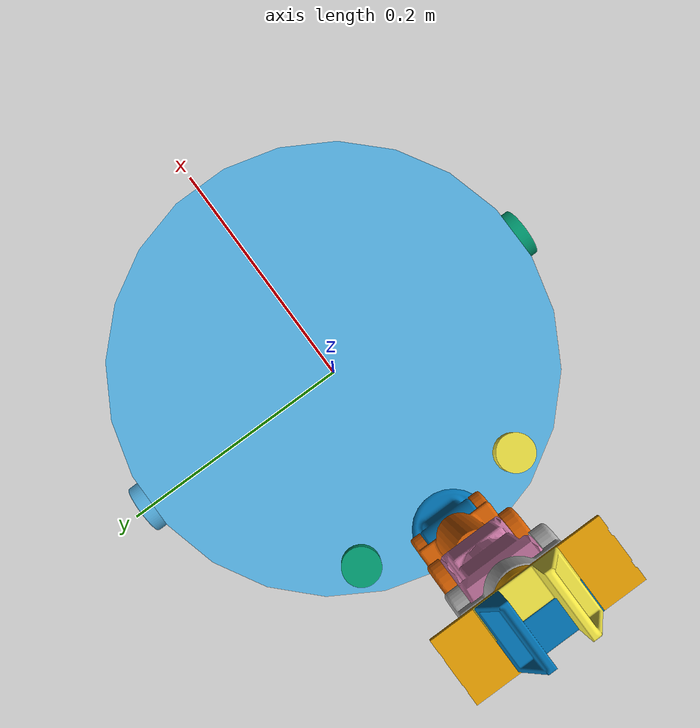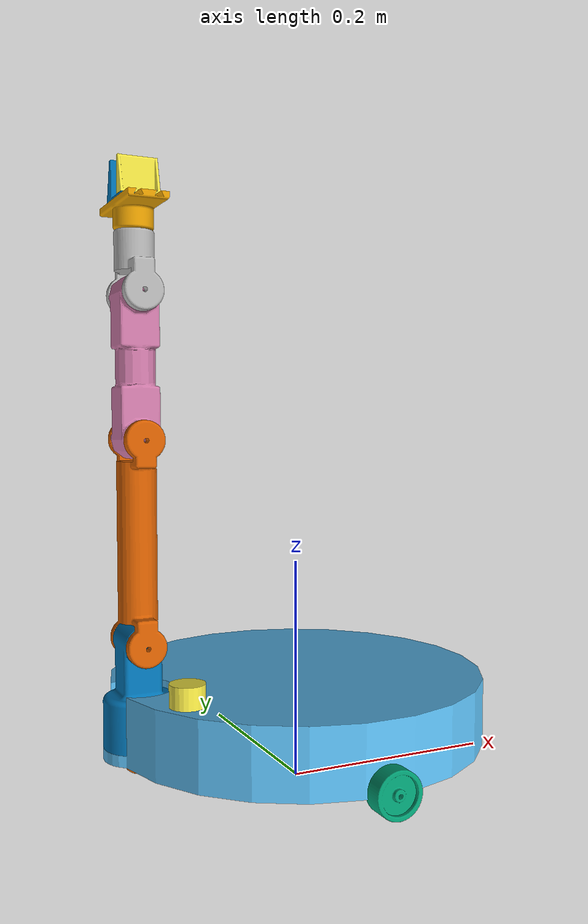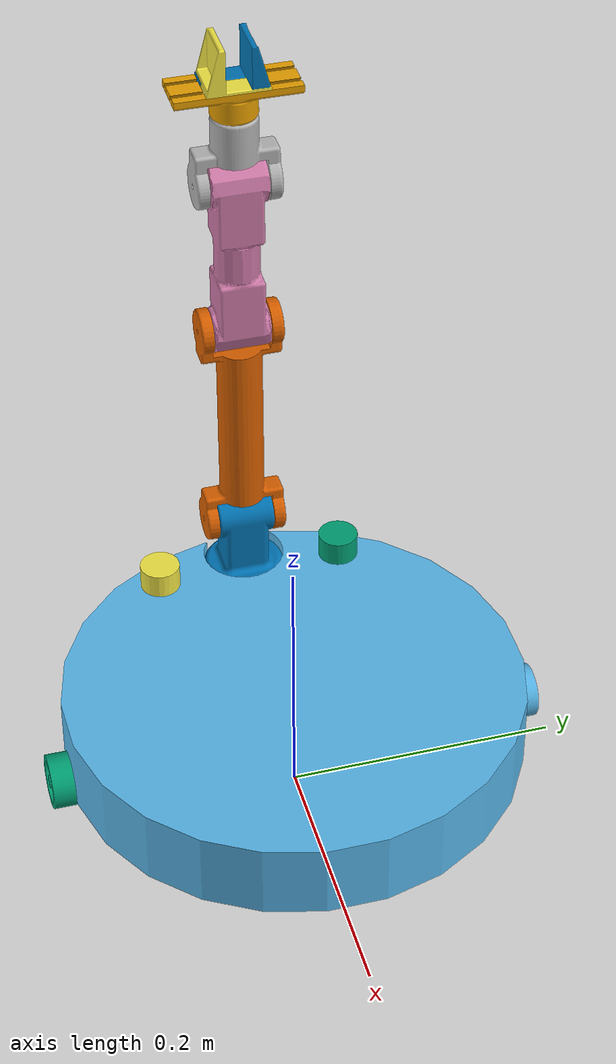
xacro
<?xml version="1.0" ?>

<robot name="ryddebot" xmlns:xacro="http://ros.org/wiki/xacro">
    <xacro:include filename="$(find robot_cleaner_sim)/urdf/common_macros.xacro" />
    <xacro:include filename="$(find robot_cleaner_sim)/urdf/robot_control.gazebo.xacro" />

    <!-- Uncomment to disable the physics engine! -->

      <xacro:property name="density_pla" value="600" />

    <!-- MOBILE PLATFORM -->

    <link name="base_footprint"/>

    <joint name="base_joint" type="fixed">
        <parent link="base_footprint"/>
        <child link="mobile_base_link" />
        <origin xyz="0 0 0.03" rpy="0 0 ${pi}"/>
    </joint>

    <!-- MOBILE BASE -->

    <link name="mobile_base_link">
        <visual>
            <origin xyz="0 0 0.01" rpy="0 0 ${pi/2}"/>
            <geometry>
                <!-- ADD VISUAL GEOMETRY HERE -->
                <mesh filename="$(find robot_cleaner_sim)/meshes/robot_body_mesh.stl" />
            </geometry>
        </visual>
        <collision>
            <origin xyz="0 0 ${0.005+0.035}" rpy="0 0 0"/>
            <geometry>
                <cylinder length="0.06" radius="0.17" />
            </geometry>
        </collision>
        <xacro:inertial_cylinder radius="0.17" length="0.06" density="${density_pla/2}">
                <origin xyz="0 0 ${0.005+0.035}" rpy="0 0 0"/>
        </xacro:inertial_cylinder>
    </link>

    <!-- LiDar_right_joint -->
    <joint type="fixed" name="LiDar_right_joint">
        <origin xyz="0.13 -0.07 ${0.03+0.034+0.015}" rpy="0 0 0"/>
        <child link="LiDar_right_link"/>
        <parent link="mobile_base_link"/>
    </joint>

    <link name="LiDar_right_link">
        <visual>
            <origin xyz="0 0 0" rpy="0 0 0"/>
            <geometry>
                <cylinder length="0.02" radius="0.015" />
            </geometry>
        </visual>
        <collision>
            <origin xyz="0 0 0" rpy="0 0 0"/>
            <geometry>
                <cylinder length="0.02" radius="0.015" />
            </geometry>
        </collision>

        <xacro:inertial_cylinder radius="0.015" length="0.02" density="${density_pla/2}">
            <origin xyz="0 0 0" rpy="0 0 0"/>
        </xacro:inertial_cylinder>
    </link>
    <!-- LiDar_left_joint -->
    <joint type="fixed" name="LiDar_left_joint">
        <origin xyz="0.13 0.07 ${0.03+0.034+0.015}" rpy="0 0 0"/>
        <child link="LiDar_left_link"/>
        <parent link="mobile_base_link"/>
    </joint>

    <link name="LiDar_left_link">
        <visual>
            <origin xyz="0 0 0" rpy="0 0 0"/>
            <geometry>
                <cylinder length="0.02" radius="0.015" />
            </geometry>
        </visual>
        <collision>
            <origin xyz="0 0 0" rpy="0 0 0"/>
            <geometry>
                <cylinder length="0.02" radius="0.015" />
            </geometry>
        </collision>

        <xacro:inertial_cylinder radius="0.015" length="0.02" density="${density_pla/2}">
            <origin xyz="0 0 0" rpy="0 0 0"/>
        </xacro:inertial_cylinder>
    </link>

    <!-- CAMERA JOINT -->

<!--        ADDING ARM STUFF HERRE          -->
    <!-- ADDING BASE ARM-->
    <joint type="revolute" name="base_arm_joint">
        <origin xyz="0.15 0 0.02" rpy="0 0 ${pi}"/>
        <child link="base_arm_link"/>
        <parent link="mobile_base_link"/>
        <axis xyz="0 0 1" rpy="0 0 0"/>
        <limit effort="1000" velocity="1000" lower="-${pi/2}" upper="${pi/2}"/>
        <dynamics damping="0.7" friction="1.0"/>
    </joint>

    <link name="base_arm_link">
        <visual>
            <origin xyz="0 0 0" rpy="0 0 0"/>
            <geometry>
                <mesh filename="$(find robot_cleaner_sim)/meshes/basearm_ferdig_mesh.stl" />
            </geometry>
        </visual>
        <collision>
            <origin xyz="0 0 0.015" rpy="0 0 0"/>
            <geometry>
                <cylinder length="0.05" radius="${0.06075/2}" />
            </geometry>
        </collision>

        <xacro:inertial_cylinder radius="${0.06075/2}" length="0.05" density="${density_pla/2}">
            <origin xyz="0 0 0.015" rpy="0 0 0"/>
        </xacro:inertial_cylinder>
    </link>

    <!-- ADDING LINK1_LINK-->
    <joint type="revolute" name="link_1_joint">
        <origin xyz="0 0 0.09" rpy="${pi/2} 0 0"/>
        <child link="link_1_link"/>
        <parent link="base_arm_link"/>
        <axis xyz="0 0 1" rpy="0 0 0"/>
        <limit effort="1000" velocity="1000" lower="-${pi/2}" upper="${pi/2}"/>
        <dynamics damping="0.7" friction="1.0"/>
    </joint>

    <link name="link_1_link">
        <visual>
            <origin xyz="0 0.086625 0" rpy="${pi/2} 0 0"/>
            <geometry>
                <mesh filename="$(find robot_cleaner_sim)/meshes/Link1Skallert_mesh.stl" />
            </geometry>
        </visual>
        <collision>
            <origin xyz="0 0.0859 0" rpy="${pi/2} 0 0"/>
            <geometry>
                <cylinder length="0.138" radius="0.0171" />
            </geometry>
        </collision>
        <xacro:inertial_cylinder radius="0.0171" length="0.138" density="${density_pla}">
            <origin xyz="0 0.0859 0" rpy="${pi/2} 0 0"/>
        </xacro:inertial_cylinder>

    </link>

 <!-- ADDING LINK2_LINK-->
    <joint type="revolute" name="link_2_joint">
        <origin xyz="0 0.17325 0" rpy="0 0 0"/>
        <child link="link_2_link"/>
        <parent link="link_1_link"/>
        <axis xyz="0 0 1" rpy="0 0 0"/>
        <limit effort="1000" velocity="1000" lower="-${pi/2}" upper="${pi/2}"/>
        <dynamics damping="0.7" friction="1.0"/>
    </joint>

    <link name="link_2_link">
        <visual>
            <origin xyz="0 ${0.1215/2} 0" rpy="${pi/2} 0 0"/>
            <geometry>
                <mesh filename="$(find robot_cleaner_sim)/meshes/Link2Skallert_mesh.stl" />
            </geometry>
        </visual>

        <collision>
            <origin xyz="0 0.062 0" rpy="${pi/2} 0 0"/>
            <geometry>
                <cylinder length="0.14" radius="0.0171" />
            </geometry>
        </collision>

        <xacro:inertial_cylinder radius="0.0171" length="0.14" density="${density_pla}">
            <origin xyz="0 0.062 0" rpy="${pi/2} 0 0"/>
        </xacro:inertial_cylinder>

    </link>

     <!-- ADDING LINK3_LINK-->
    <joint type="revolute" name="link_3_joint">
        <origin xyz="0 0.1215 0" rpy="0 0 0"/>
        <child link="link_3_link"/>
        <parent link="link_2_link"/>
        <axis xyz="0 0 1" rpy="0 0 0"/>
        <limit effort="1000" velocity="1000" lower="-${pi/2}" upper="${pi/2}"/>
        <dynamics damping="0.7" friction="1.0"/>
    </joint>

    <link name="link_3_link">
        <visual>
            <origin xyz="0 ${0.086625-0.03375} 0" rpy="${pi/2} 0 ${pi}"/>
            <geometry>
                <mesh filename="$(find robot_cleaner_sim)/meshes/Link3Skallert_mesh.stl" />
            </geometry>
        </visual>

        <collision>
            <origin xyz="0 0.035 0" rpy="${pi/2} 0 0"/>
            <geometry>
                <cylinder length="0.033" radius="${0.06075/3.5}" />
            </geometry>
        </collision>
        <xacro:inertial_cylinder radius="${0.06075/3.5}" length="0.033" density="${density_pla}">
            <origin xyz="0 0.035 0" rpy="0 0 0"/>
        </xacro:inertial_cylinder>

    </link>

    <!-- ADDING base_gripper_LINK-->
    <joint name="base_gripper_joint" type="fixed">
        <parent link="link_3_link"/>
        <child link="base_gripper_link" />
        <origin xyz="0 0 0" rpy="0 0 0"/>
    </joint>

    <link name="base_gripper_link">
        <visual>
            <origin xyz="0 ${0.0535} 0.0005" rpy="-${pi/2} -${pi/2} 0"/>
            <geometry>
                <mesh filename="$(find robot_cleaner_sim)/meshes/GripperBaseSkallert_mesh.stl" />
            </geometry>
        </visual>
        <collision>
            <origin xyz="0 0.075 0" rpy="${pi/2} ${pi/2} 0"/>
            <geometry>
                <box size="0.090 0.0400 0.0100"/>
            </geometry>
        </collision>
        <xacro:inertial_box length="0.090" width="0.0400" height="0.0100" density="${density_pla}">
            <origin xyz="0 0.075 0" rpy="${pi/2} ${pi/2} 0"/>
        </xacro:inertial_box>

    </link>

     <!-- ADDING right_wheel-->
    <joint type="continuous" name="wheel_right_joint">
        <origin xyz="0 -${0.17+0.005} 0.015" rpy="-${pi/2} 0 0"/>
        <child link="wheel_right_link"/>
        <parent link="mobile_base_link"/>
        <axis xyz="0 0 1" rpy="0 0 0"/>
        <limit effort="1000" velocity="1000"/>
        <dynamics damping="0.7" friction="1.0"/>
    </joint>

    <link name="wheel_right_link">
        <visual>
            <origin xyz="0 0 0" rpy="0 0 0"/>
            <geometry>
                <mesh filename="$(find robot_cleaner_sim)/meshes/WheelSkallertFeridig.stl" />
            </geometry>
        </visual>
        <collision>
            <origin xyz="0 0 0" rpy="0 0 0"/>
            <geometry>
                <cylinder length="0.02" radius="0.02" />
            </geometry>
        </collision>
        <xacro:inertial_cylinder radius="0.02" length="0.02" density="${density_pla}">
            <origin xyz="0 0 0" rpy="0 0 0"/>
        </xacro:inertial_cylinder>
    </link>

     <!-- ADDING left_wheel-->
        <joint type="continuous" name="wheel_left_joint">
        <origin xyz="0 ${0.17+0.005} 0.015" rpy="-${pi/2} 0 0"/>
        <child link="wheel_left_link"/>
        <parent link="mobile_base_link"/>
        <axis xyz="0 0 1" rpy="0 0 0"/>
        <limit effort="1000" velocity="1000"/>
        <dynamics damping="0.7" friction="1.0"/>
    </joint>

    <link name="wheel_left_link">
        <visual>
            <origin xyz="0 0 0" rpy="0 0 0"/>
            <geometry>
                <mesh filename="$(find robot_cleaner_sim)/meshes/WheelSkallertFeridig.stl" />
            </geometry>
        </visual>
        <collision>
            <origin xyz="0 0 0" rpy="0 0 0"/>
            <geometry>
                <cylinder length="0.02" radius="0.02" />
            </geometry>
        </collision>
        <xacro:inertial_cylinder radius="0.02" length="0.02" density="${density_pla}">
            <origin xyz="0 0 0" rpy="0 0 0"/>
        </xacro:inertial_cylinder>
    </link>

    <!-- ADDING right_finger_joint-->
    <joint type="prismatic" name="right_finger_joint">
        <origin xyz="0 0.0775 0" rpy="0 0 0"/>
        <child link="right_finger_link"/>
        <parent link="base_gripper_link"/>
        <axis xyz="0 0 1" rpy="0 0 0"/>
        <limit effort="100" velocity="100" lower="0" upper="0.01"/>
        <dynamics damping="0.7" friction="1.0"/>

    </joint>

    <link name="right_finger_link">
        <visual>
            <origin xyz="0 0 0" rpy="-${pi/2} ${pi/2} 0"/>
            <geometry>
                <mesh filename="$(find robot_cleaner_sim)/meshes/gripfingskallertVeldigLitenOgSoot.stl" />
            </geometry>
        </visual>

        <!--flate på gripperen-->
        <collision>
            <origin xyz="0.006 0 0.0" rpy="0 0 ${pi/2}"/>
            <geometry>
                <box size="0.005 ${0.0375/4} 0.045" />
            </geometry>
        </collision>
        <!--flate på gripper fingeren-->
        <collision>
            <origin xyz="0 0.0165 0.014" rpy="0 0 0"/>
            <geometry>
                <box size="0.0342 0.03425 0.01" />
            </geometry>
        </collision>

        <xacro:inertial_box length="0.0342" width="0.03425" height="0.01" density="${density_pla}">
        <origin xyz="0 0.0165 0.014" rpy="0 0 0"/>
    </xacro:inertial_box>
    </link>

    <!-- ADDING left_finger_joint-->
    <joint type="prismatic" name="left_finger_joint">
        <origin xyz="0 0.0775 0" rpy="0 0 0"/>
        <child link="left_finger_link"/>
        <parent link="base_gripper_link"/>
        <axis xyz="0 0 1" rpy="0 0 0"/>
        <limit effort="1000" velocity="1000" lower="0.0" upper="0.01"/>
        <dynamics damping="0.7" friction="1.0"/>

    </joint>

    <link name="left_finger_link">
        <visual>
            <origin xyz="0 0 0" rpy="-${pi/2} -${pi/2} 0"/>
            <geometry>
                <mesh filename="$(find robot_cleaner_sim)/meshes/gripfingskallertVeldigLitenOgSoot.stl" />
            </geometry>
        </visual>

        <collision>
            <origin xyz="-0.006 0 0.0" rpy="0 0 ${pi/2}"/>
            <geometry>
                <box size="0.005 ${0.0375/4} 0.045" />
            </geometry>
        </collision>
        <!--flate på gripper fingeren-->
        <collision>
            <origin xyz="0 0.0165 -0.014" rpy="0 0 0"/>
            <geometry>
                <box size="0.0342 0.03425 0.01" />
            </geometry>
        </collision>

        <xacro:inertial_box length="0.0342" width="0.03425" height="0.01" density="${density_pla}">
        <origin xyz="0 0.0165 0.014" rpy="0 0 0"/>
    </xacro:inertial_box>
    </link>

    <!-- ADDING casta_wheel_link-->
    <!-- ADDING casta_wheel_link-->

    <!--NB PRØV DENNE-->
    <!-- Kanskje denne kan erstatte den fixed jointen over -->

    <joint type="fixed" name="casta_wheel_joint">
        <origin xyz="0.15 0 0.01" rpy="0 0 0"/>
        <child link="casta_wheel_link"/>
        <parent link="mobile_base_link"/>
    </joint>

    <link name="casta_wheel_link">
        <visual>
            <origin xyz="-0.015 -0.013 -0.015" rpy="0 0 0"/>
            <geometry>
                <mesh filename="$(find robot_cleaner_sim)/meshes/CastaWheelSkallert.stl" />
            </geometry>
        </visual>
        <collision>
            <origin xyz="0 0 0.0" rpy="${pi/2} 0 0"/>
            <geometry>
                <cylinder length="0.005" radius="0.015" />
            </geometry>
        </collision>

        <xacro:inertial_cylinder radius="0.015" length="0.005" density="${density_pla}">
            <origin xyz="0 0 0.0" rpy="0.0 0.0 0.0"/>
        </xacro:inertial_cylinder>
    </link>

</robot>
